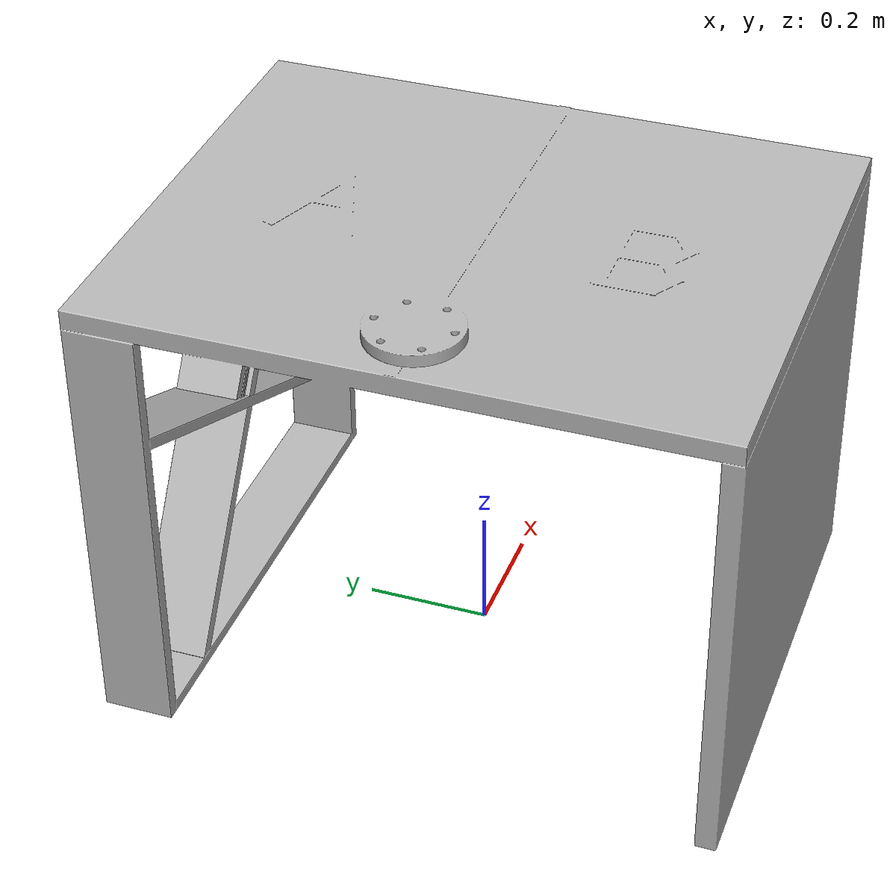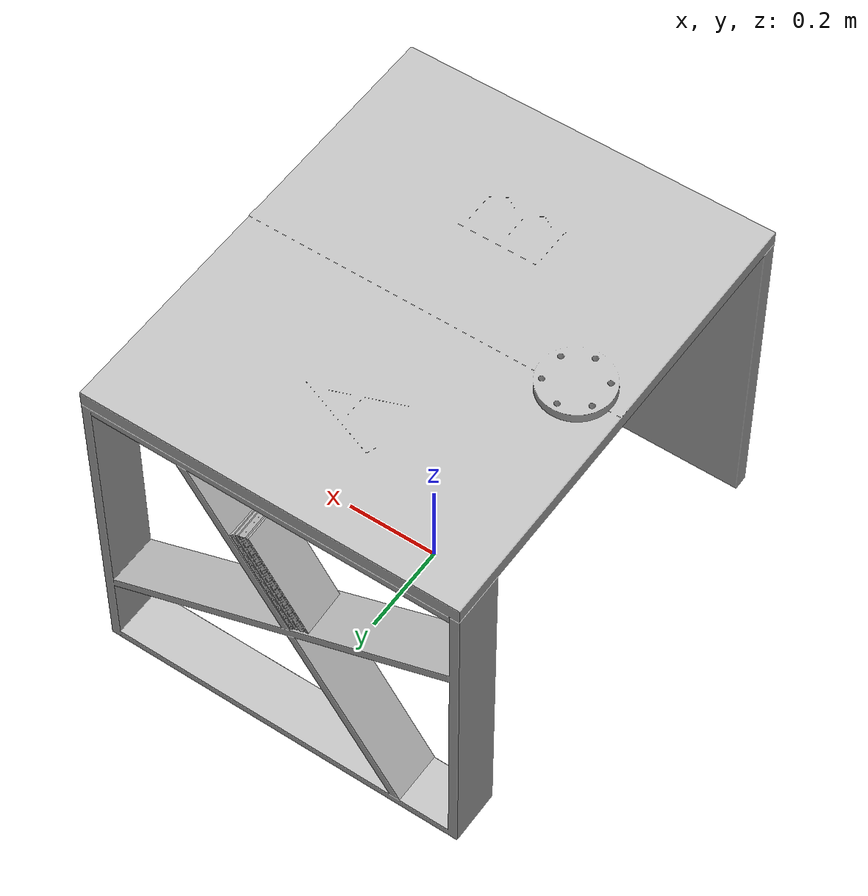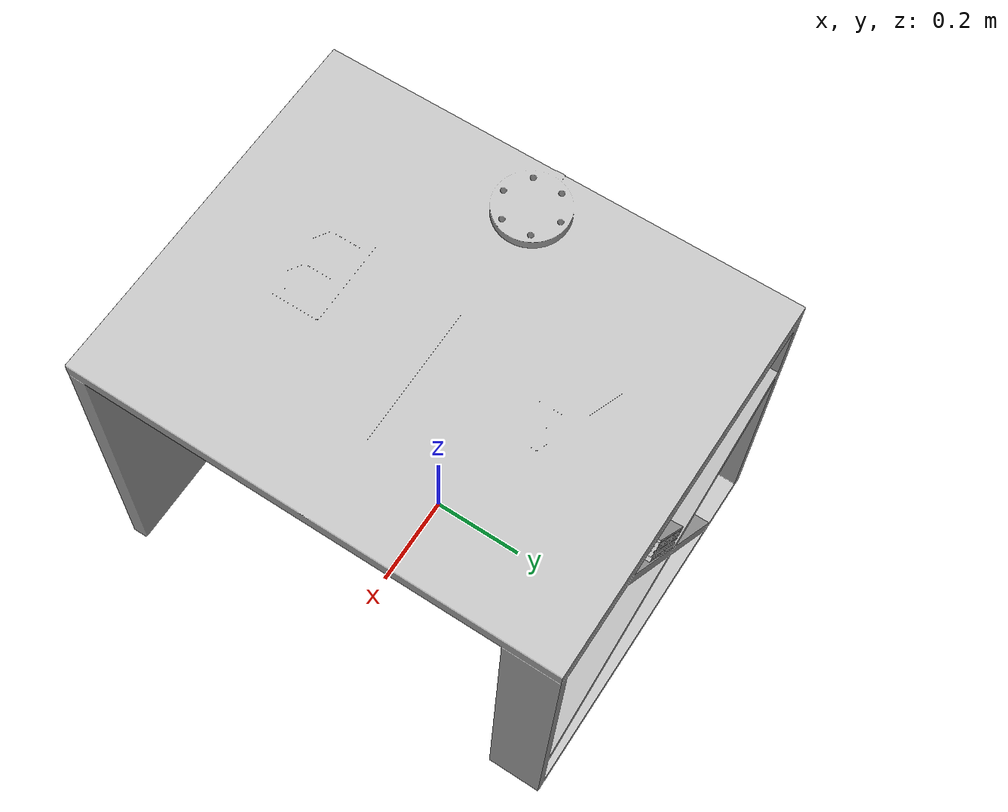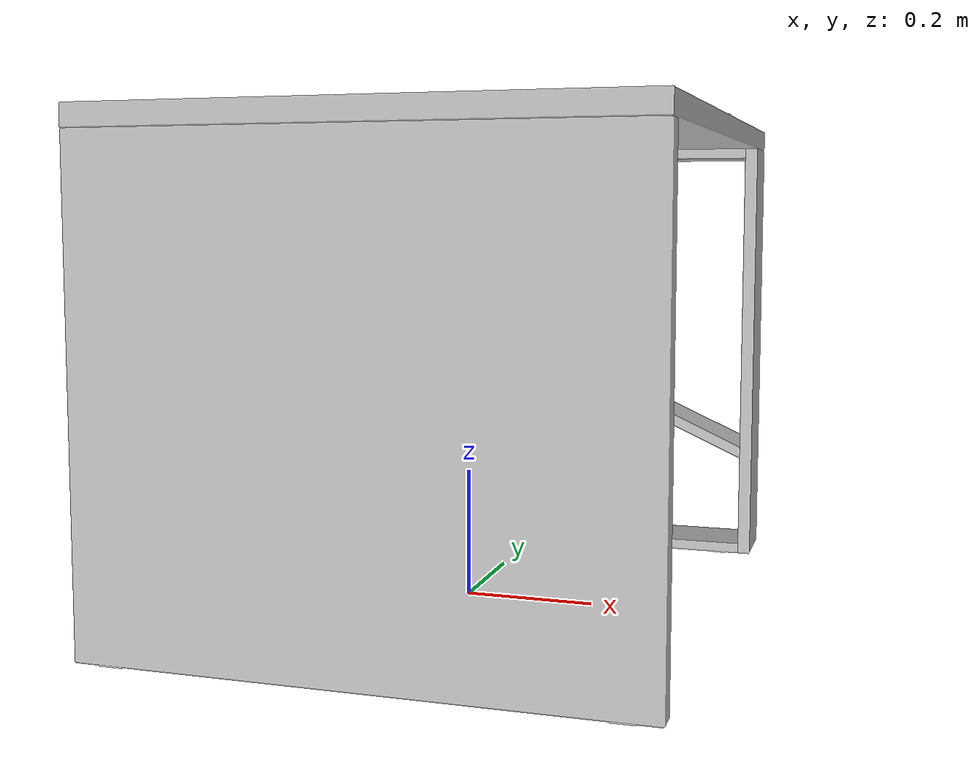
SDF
<?xml version="1.0"?>
<sdf version="1.9">
  <model name="table_vla">
    <static>true</static>

    <link name="link">

      <visual name="visual">
        <geometry>
          <mesh>
            <uri>model://table_vla/meshes/table_vla.obj</uri>
          </mesh>
        </geometry>
      </visual>

      <collision name="collision">
        <geometry>
          <mesh>
            <uri>model://table_vla/meshes/table_vla.obj</uri>
          </mesh>
        </geometry>
      </collision>

    </link>
  </model>
</sdf>
